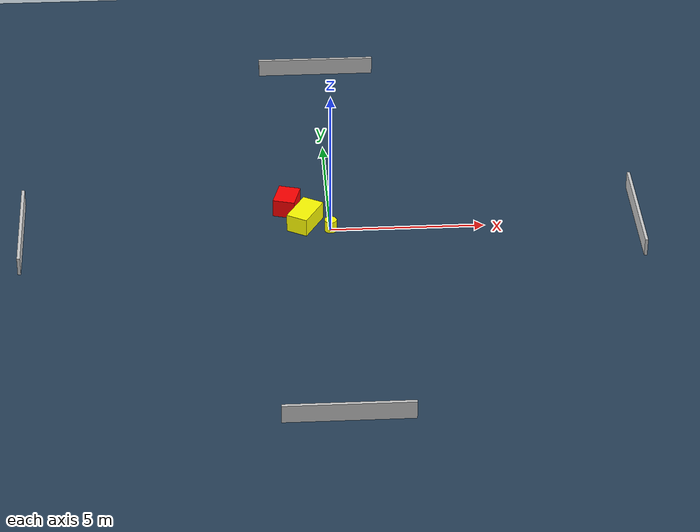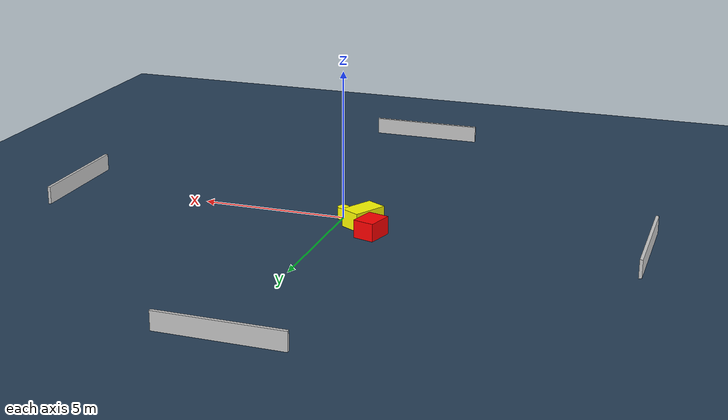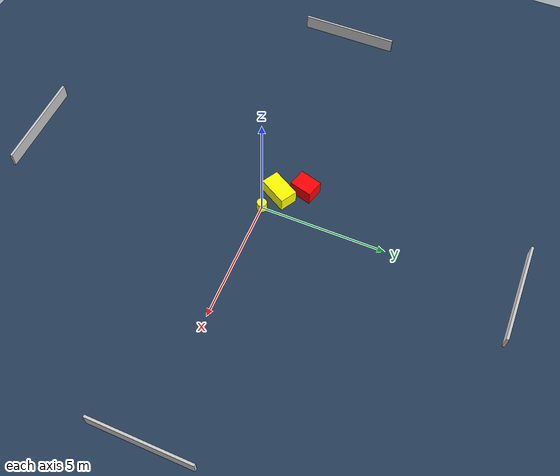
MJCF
<?xml version="1.0" ?>
<mujoco model="generated_environment">
  <option timestep="0.01" integrator="RK4" cone="elliptic"/>
  <default>
    <geom density="1"/>
  </default>
  <asset>
    <texture builtin="gradient" height="3072" name="skybox" rgb1="0.3 0.5 0.7" rgb2="0 0 0" type="skybox" width="512"/>
    <texture builtin="checker" height="300" name="groundplane" rgb1="0.2 0.3 0.4" rgb2="0.1 0.2 0.3" type="2d" width="300"/>
    <material name="groundplane" reflectance="0.2" texrepeat="5 5" texture="groundplane"/>
  </asset>
  <worldbody>
    <light dir="0 0 -1" directional="true" pos="0 0 1.5"/>
    <geom condim="3" friction="0.5 0.005 0.001" material="groundplane" name="floor" pos="0 0 0" size="0 0 0.05" type="plane"/>
    <body name="walls">
      <geom name="wall_1" condim="4" pos="-10.0 0.0 0.3" rgba="0.800000011920929 0.800000011920929 0.800000011920929 1.0" size="0.05 2.0 0.3" type="box"/>
      <geom name="wall_2" condim="4" pos="10.0 0.0 0.3" rgba="0.800000011920929 0.800000011920929 0.800000011920929 1.0" size="0.05 2.0 0.3" type="box"/>
      <geom name="wall_3" condim="4" pos="0.0 -10.0 0.3" rgba="0.800000011920929 0.800000011920929 0.800000011920929 1.0" size="2.0 0.05 0.3" type="box"/>
      <geom name="wall_4" condim="4" pos="0.0 10.0 0.3" rgba="0.800000011920929 0.800000011920929 0.800000011920929 1.0" size="2.0 0.05 0.3" type="box"/>
    </body>
    <body name="robot">
      <joint name="joint_x" type="slide" pos="0 0 0" axis="1 0 0"/>
      <joint name="joint_y" type="slide" pos="0 0 0" axis="0 1 0"/>
      <geom name="robot" type="cylinder" pos="0.0 0.0 0.2" size="0.2 0.2 0.0" mass="5.0" friction="1.0 0.005 0.0001" condim="4" rgba="1.0 1.0 0.0 1.0"/>
    </body>
    <body name="obstacle_1_movable">
      <geom name="obstacle_1_movable" condim="4" pos="-0.8119531551643419 0.3857760041219502 0.3" euler="0 0 330.43372073517537" friction="0.0 0.005 0.001" rgba="1.0 1.0 0.0 1.0" size="0.3593423839337163 0.6052742462565373 0.3" type="box" mass="0.1"/>
      <joint type="free"/>
    </body>
    <body name="obstacle_2_static">
      <geom name="obstacle_2_static" condim="4" pos="-1.3742798172646888 1.2674345073086748 0.3" euler="0 0 344.48193566034655" friction="0.0 0.005 0.001" rgba="1.0 0.0 0.0 1.0" size="0.3582127819843538 0.4548938217356037 0.3" type="box"/>
    </body>
  </worldbody>
  <actuator>
    <motor name="actuator_x" joint="joint_x" gear="1" ctrlrange="-1 1"/>
    <motor name="actuator_y" joint="joint_y" gear="1" ctrlrange="-1 1"/>
  </actuator>
</mujoco>
